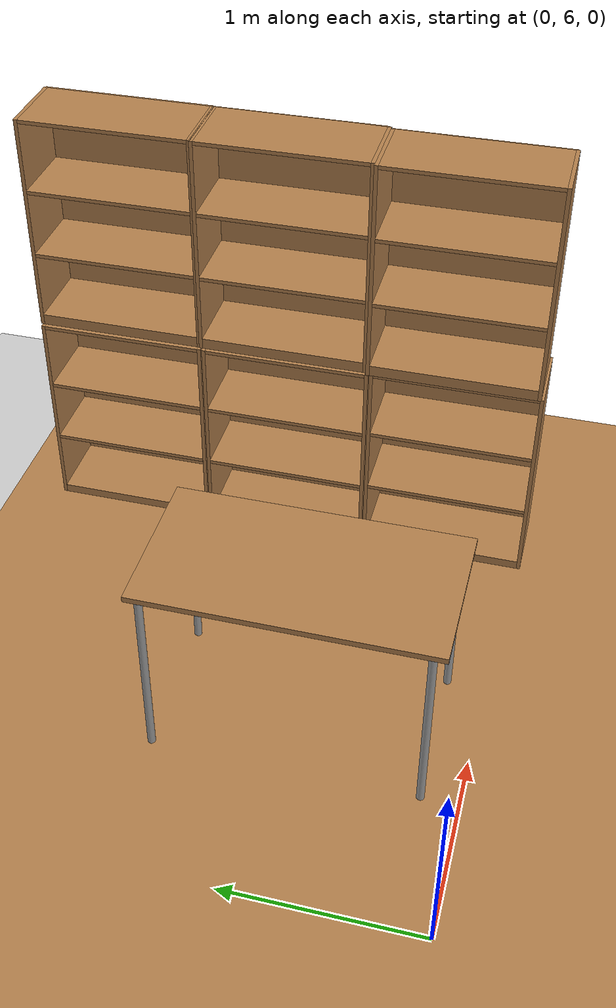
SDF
<sdf version="1.7">
 <world name="default">
  <model name="ground_plane">
   <static>1</static>
   <link name="link">
    <collision name="collision">
     <geometry><plane><normal>0 0 1</normal><size>100 100</size></plane></geometry>
     <surface>
      <contact><collide_bitmask>65535</collide_bitmask></contact>
      <friction><ode><mu>100</mu><mu2>50</mu2></ode></friction>
     </surface>
    </collision>
    <visual name="visual">
     <cast_shadows>0</cast_shadows>
     <geometry><plane><normal>0 0 1</normal><size>100 100</size></plane></geometry>
     <material>
      <script><uri>file://media/materials/scripts/gazebo.material</uri><name>Gazebo/Grey</name></script>
     </material>
    </visual>
   </link>
  </model>
  <model name="ground">
   <link name="Wall_2">
    <pose>6.2457 -16.572 0 0 -0 0</pose>
    <inertial>
     <mass>1</mass>
     <inertia><ixx>1</ixx><ixy>0</ixy><ixz>0</ixz><iyy>1</iyy><iyz>0</iyz><izz>1</izz></inertia>
    </inertial>
    <visual name="Wall_2_Visual">
     <pose>0 0 0.005 0 -0 0</pose>
     <geometry><box><size>14 17 0.01</size></box></geometry>
     <material>
      <script><uri>file://media/materials/scripts/gazebo.material</uri><name>Gazebo/Wood</name></script>
      <ambient>0 0 0 1</ambient>
      <shader type="pixel"><normal_map>__default__</normal_map></shader>
      <diffuse>1 1 1 1</diffuse>
      <specular>0.2 0.2 0.2 1</specular>
      <emissive>0 0 0 1</emissive>
     </material>
     <meta><layer>0</layer></meta>
    </visual>
    <collision name="Wall_2_Collision">
     <pose>0 0 0.005 0 -0 0</pose>
     <geometry><box><size>14 17 0.01</size></box></geometry>
     <surface>
      <friction>
       <ode><mu>1</mu><mu2>1</mu2><fdir1>0 0 0</fdir1><slip1>0</slip1><slip2>0</slip2></ode>
       <torsional>
        <coefficient>1</coefficient>
        <patch_radius>0</patch_radius>
        <surface_radius>0</surface_radius>
        <use_patch_radius>1</use_patch_radius>
        <ode><slip>0</slip></ode>
       </torsional>
      </friction>
      <bounce><restitution_coefficient>0</restitution_coefficient><threshold>1e+06</threshold></bounce>
      <contact>
       <collide_without_contact>0</collide_without_contact>
       <collide_without_contact_bitmask>1</collide_without_contact_bitmask>
       <collide_bitmask>1</collide_bitmask>
       <ode>
        <soft_cfm>0</soft_cfm>
        <soft_erp>0.2</soft_erp>
        <kp>1e+13</kp>
        <kd>1</kd>
        <max_vel>0.01</max_vel>
        <min_depth>0</min_depth>
       </ode>
       <bullet>
        <split_impulse>1</split_impulse>
        <split_impulse_penetration_threshold>-0.01</split_impulse_penetration_threshold>
        <soft_cfm>0</soft_cfm>
        <soft_erp>0.2</soft_erp>
        <kp>1e+13</kp>
        <kd>1</kd>
       </bullet>
      </contact>
     </surface>
    </collision>
   </link>
   <static>1</static>
   <pose>-5.17108 17.0771 0 0 -0 0</pose>
  </model>
  <model name="bookshelf">
   <static>1</static>
   <link name="link">
    <inertial><mass>1</mass></inertial>
    <collision name="back">
     <pose>0 0.005 0.6 0 -0 0</pose>
     <geometry><box><size>0.9 0.01 1.2</size></box></geometry>
    </collision>
    <visual name="visual1">
     <pose>0 0.005 0.6 0 -0 0</pose>
     <geometry><box><size>0.9 0.01 1.2</size></box></geometry>
     <material>
      <script><uri>file://media/materials/scripts/gazebo.material</uri><name>Gazebo/Wood</name></script>
     </material>
    </visual>
    <collision name="left_side">
     <pose>0.45 -0.195 0.6 0 -0 0</pose>
     <geometry><box><size>0.02 0.4 1.2</size></box></geometry>
    </collision>
    <visual name="visual2">
     <pose>0.45 -0.195 0.6 0 -0 0</pose>
     <geometry><box><size>0.02 0.4 1.2</size></box></geometry>
     <material>
      <script><uri>file://media/materials/scripts/gazebo.material</uri><name>Gazebo/Wood</name></script>
     </material>
    </visual>
    <collision name="right_side">
     <pose>-0.45 -0.195 0.6 0 -0 0</pose>
     <geometry><box><size>0.02 0.4 1.2</size></box></geometry>
    </collision>
    <visual name="visual3">
     <pose>-0.45 -0.195 0.6 0 -0 0</pose>
     <geometry><box><size>0.02 0.4 1.2</size></box></geometry>
     <material>
      <script><uri>file://media/materials/scripts/gazebo.material</uri><name>Gazebo/Wood</name></script>
     </material>
    </visual>
    <collision name="bottom">
     <pose>0 -0.195 0.03 0 -0 0</pose>
     <geometry><box><size>0.88 0.4 0.06</size></box></geometry>
    </collision>
    <visual name="visual4">
     <pose>0 -0.195 0.03 0 -0 0</pose>
     <geometry><box><size>0.88 0.4 0.06</size></box></geometry>
     <material>
      <script><uri>file://media/materials/scripts/gazebo.material</uri><name>Gazebo/Wood</name></script>
     </material>
    </visual>
    <collision name="top">
     <pose>0 -0.195 1.19 0 -0 0</pose>
     <geometry><box><size>0.88 0.4 0.02</size></box></geometry>
    </collision>
    <visual name="visual5">
     <pose>0 -0.195 1.19 0 -0 0</pose>
     <geometry><box><size>0.88 0.4 0.02</size></box></geometry>
     <material>
      <script><uri>file://media/materials/scripts/gazebo.material</uri><name>Gazebo/Wood</name></script>
     </material>
    </visual>
    <collision name="low_shelf">
     <pose>0 -0.195 0.43 0 -0 0</pose>
     <geometry><box><size>0.88 0.4 0.02</size></box></geometry>
    </collision>
    <visual name="visual6">
     <pose>0 -0.195 0.43 0 -0 0</pose>
     <geometry><box><size>0.88 0.4 0.02</size></box></geometry>
     <material>
      <script><uri>file://media/materials/scripts/gazebo.material</uri><name>Gazebo/Wood</name></script>
     </material>
    </visual>
    <collision name="high_shelf">
     <pose>0 -0.195 0.8 0 -0 0</pose>
     <geometry><box><size>0.88 0.4 0.02</size></box></geometry>
    </collision>
    <visual name="visual7">
     <pose>0 -0.195 0.8 0 -0 0</pose>
     <geometry><box><size>0.88 0.4 0.02</size></box></geometry>
     <material>
      <script><uri>file://media/materials/scripts/gazebo.material</uri><name>Gazebo/Wood</name></script>
     </material>
    </visual>
   </link>
   <pose>2.81633 8.2449 0 0 0 -1.5708</pose>
  </model>
  <model name="bookshelf_clone">
   <static>1</static>
   <link name="link">
    <inertial><mass>1</mass></inertial>
    <collision name="back">
     <pose>0 0.005 0.6 0 -0 0</pose>
     <geometry><box><size>0.9 0.01 1.2</size></box></geometry>
    </collision>
    <visual name="visual1">
     <pose>0 0.005 0.6 0 -0 0</pose>
     <geometry><box><size>0.9 0.01 1.2</size></box></geometry>
     <material>
      <script><uri>file://media/materials/scripts/gazebo.material</uri><name>Gazebo/Wood</name></script>
     </material>
    </visual>
    <collision name="left_side">
     <pose>0.45 -0.195 0.6 0 -0 0</pose>
     <geometry><box><size>0.02 0.4 1.2</size></box></geometry>
    </collision>
    <visual name="visual2">
     <pose>0.45 -0.195 0.6 0 -0 0</pose>
     <geometry><box><size>0.02 0.4 1.2</size></box></geometry>
     <material>
      <script><uri>file://media/materials/scripts/gazebo.material</uri><name>Gazebo/Wood</name></script>
     </material>
    </visual>
    <collision name="right_side">
     <pose>-0.45 -0.195 0.6 0 -0 0</pose>
     <geometry><box><size>0.02 0.4 1.2</size></box></geometry>
    </collision>
    <visual name="visual3">
     <pose>-0.45 -0.195 0.6 0 -0 0</pose>
     <geometry><box><size>0.02 0.4 1.2</size></box></geometry>
     <material>
      <script><uri>file://media/materials/scripts/gazebo.material</uri><name>Gazebo/Wood</name></script>
     </material>
    </visual>
    <collision name="bottom">
     <pose>0 -0.195 0.03 0 -0 0</pose>
     <geometry><box><size>0.88 0.4 0.06</size></box></geometry>
    </collision>
    <visual name="visual4">
     <pose>0 -0.195 0.03 0 -0 0</pose>
     <geometry><box><size>0.88 0.4 0.06</size></box></geometry>
     <material>
      <script><uri>file://media/materials/scripts/gazebo.material</uri><name>Gazebo/Wood</name></script>
     </material>
    </visual>
    <collision name="top">
     <pose>0 -0.195 1.19 0 -0 0</pose>
     <geometry><box><size>0.88 0.4 0.02</size></box></geometry>
    </collision>
    <visual name="visual5">
     <pose>0 -0.195 1.19 0 -0 0</pose>
     <geometry><box><size>0.88 0.4 0.02</size></box></geometry>
     <material>
      <script><uri>file://media/materials/scripts/gazebo.material</uri><name>Gazebo/Wood</name></script>
     </material>
    </visual>
    <collision name="low_shelf">
     <pose>0 -0.195 0.43 0 -0 0</pose>
     <geometry><box><size>0.88 0.4 0.02</size></box></geometry>
    </collision>
    <visual name="visual6">
     <pose>0 -0.195 0.43 0 -0 0</pose>
     <geometry><box><size>0.88 0.4 0.02</size></box></geometry>
     <material>
      <script><uri>file://media/materials/scripts/gazebo.material</uri><name>Gazebo/Wood</name></script>
     </material>
    </visual>
    <collision name="high_shelf">
     <pose>0 -0.195 0.8 0 -0 0</pose>
     <geometry><box><size>0.88 0.4 0.02</size></box></geometry>
    </collision>
    <visual name="visual7">
     <pose>0 -0.195 0.8 0 -0 0</pose>
     <geometry><box><size>0.88 0.4 0.02</size></box></geometry>
     <material>
      <script><uri>file://media/materials/scripts/gazebo.material</uri><name>Gazebo/Wood</name></script>
     </material>
    </visual>
   </link>
   <pose>2.81395 7.31893 0 0 0 -1.5708</pose>
  </model>
  <model name="bookshelf_clone_0">
   <static>1</static>
   <link name="link">
    <inertial><mass>1</mass></inertial>
    <collision name="back">
     <pose>0 0.005 0.6 0 -0 0</pose>
     <geometry><box><size>0.9 0.01 1.2</size></box></geometry>
    </collision>
    <visual name="visual1">
     <pose>0 0.005 0.6 0 -0 0</pose>
     <geometry><box><size>0.9 0.01 1.2</size></box></geometry>
     <material>
      <script><uri>file://media/materials/scripts/gazebo.material</uri><name>Gazebo/Wood</name></script>
     </material>
    </visual>
    <collision name="left_side">
     <pose>0.45 -0.195 0.6 0 -0 0</pose>
     <geometry><box><size>0.02 0.4 1.2</size></box></geometry>
    </collision>
    <visual name="visual2">
     <pose>0.45 -0.195 0.6 0 -0 0</pose>
     <geometry><box><size>0.02 0.4 1.2</size></box></geometry>
     <material>
      <script><uri>file://media/materials/scripts/gazebo.material</uri><name>Gazebo/Wood</name></script>
     </material>
    </visual>
    <collision name="right_side">
     <pose>-0.45 -0.195 0.6 0 -0 0</pose>
     <geometry><box><size>0.02 0.4 1.2</size></box></geometry>
    </collision>
    <visual name="visual3">
     <pose>-0.45 -0.195 0.6 0 -0 0</pose>
     <geometry><box><size>0.02 0.4 1.2</size></box></geometry>
     <material>
      <script><uri>file://media/materials/scripts/gazebo.material</uri><name>Gazebo/Wood</name></script>
     </material>
    </visual>
    <collision name="bottom">
     <pose>0 -0.195 0.03 0 -0 0</pose>
     <geometry><box><size>0.88 0.4 0.06</size></box></geometry>
    </collision>
    <visual name="visual4">
     <pose>0 -0.195 0.03 0 -0 0</pose>
     <geometry><box><size>0.88 0.4 0.06</size></box></geometry>
     <material>
      <script><uri>file://media/materials/scripts/gazebo.material</uri><name>Gazebo/Wood</name></script>
     </material>
    </visual>
    <collision name="top">
     <pose>0 -0.195 1.19 0 -0 0</pose>
     <geometry><box><size>0.88 0.4 0.02</size></box></geometry>
    </collision>
    <visual name="visual5">
     <pose>0 -0.195 1.19 0 -0 0</pose>
     <geometry><box><size>0.88 0.4 0.02</size></box></geometry>
     <material>
      <script><uri>file://media/materials/scripts/gazebo.material</uri><name>Gazebo/Wood</name></script>
     </material>
    </visual>
    <collision name="low_shelf">
     <pose>0 -0.195 0.43 0 -0 0</pose>
     <geometry><box><size>0.88 0.4 0.02</size></box></geometry>
    </collision>
    <visual name="visual6">
     <pose>0 -0.195 0.43 0 -0 0</pose>
     <geometry><box><size>0.88 0.4 0.02</size></box></geometry>
     <material>
      <script><uri>file://media/materials/scripts/gazebo.material</uri><name>Gazebo/Wood</name></script>
     </material>
    </visual>
    <collision name="high_shelf">
     <pose>0 -0.195 0.8 0 -0 0</pose>
     <geometry><box><size>0.88 0.4 0.02</size></box></geometry>
    </collision>
    <visual name="visual7">
     <pose>0 -0.195 0.8 0 -0 0</pose>
     <geometry><box><size>0.88 0.4 0.02</size></box></geometry>
     <material>
      <script><uri>file://media/materials/scripts/gazebo.material</uri><name>Gazebo/Wood</name></script>
     </material>
    </visual>
   </link>
   <pose>2.82717 6.39672 0 0 0 -1.5708</pose>
  </model>
  <model name="table_0_clone_0">
   <static>1</static>
   <link name="link">
    <collision name="surface">
     <pose>0 0 1 0 -0 0</pose>
     <geometry><box><size>1.5 0.8 0.03</size></box></geometry>
     <surface><friction><ode><mu>0.6</mu><mu2>0.6</mu2></ode></friction></surface>
    </collision>
    <visual name="visual1">
     <pose>0 0 1 0 -0 0</pose>
     <geometry><box><size>1.5 0.8 0.03</size></box></geometry>
     <material>
      <script><uri>file://media/materials/scripts/gazebo.material</uri><name>Gazebo/Wood</name></script>
     </material>
    </visual>
    <collision name="front_left_leg">
     <pose>0.68 0.38 0.5 0 -0 0</pose>
     <geometry><cylinder><radius>0.02</radius><length>1</length></cylinder></geometry>
    </collision>
    <visual name="front_left_leg">
     <pose>0.68 0.38 0.5 0 -0 0</pose>
     <geometry><cylinder><radius>0.02</radius><length>1</length></cylinder></geometry>
     <material>
      <script><uri>file://media/materials/scripts/gazebo.material</uri><name>Gazebo/Grey</name></script>
     </material>
    </visual>
    <collision name="front_right_leg">
     <pose>0.68 -0.38 0.5 0 -0 0</pose>
     <geometry><cylinder><radius>0.02</radius><length>1</length></cylinder></geometry>
    </collision>
    <visual name="front_right_leg">
     <pose>0.68 -0.38 0.5 0 -0 0</pose>
     <geometry><cylinder><radius>0.02</radius><length>1</length></cylinder></geometry>
     <material>
      <script><uri>file://media/materials/scripts/gazebo.material</uri><name>Gazebo/Grey</name></script>
     </material>
    </visual>
    <collision name="back_right_leg">
     <pose>-0.68 -0.38 0.5 0 -0 0</pose>
     <geometry><cylinder><radius>0.02</radius><length>1</length></cylinder></geometry>
    </collision>
    <visual name="back_right_leg">
     <pose>-0.68 -0.38 0.5 0 -0 0</pose>
     <geometry><cylinder><radius>0.02</radius><length>1</length></cylinder></geometry>
     <material>
      <script><uri>file://media/materials/scripts/gazebo.material</uri><name>Gazebo/Grey</name></script>
     </material>
    </visual>
    <collision name="back_left_leg">
     <pose>-0.68 0.38 0.5 0 -0 0</pose>
     <geometry><cylinder><radius>0.02</radius><length>1</length></cylinder></geometry>
    </collision>
    <visual name="back_left_leg">
     <pose>-0.68 0.38 0.5 0 -0 0</pose>
     <geometry><cylinder><radius>0.02</radius><length>1</length></cylinder></geometry>
     <material>
      <script><uri>file://media/materials/scripts/gazebo.material</uri><name>Gazebo/Grey</name></script>
     </material>
    </visual>
   </link>
   <pose>1.10892 6.87097 0 0 -0 1.5708</pose>
  </model>
  <model name="bookshelf_clone_5">
   <static>1</static>
   <link name="link">
    <inertial><mass>1</mass></inertial>
    <collision name="back">
     <pose>0 0.005 0.6 0 -0 0</pose>
     <geometry><box><size>0.9 0.01 1.2</size></box></geometry>
    </collision>
    <visual name="visual1">
     <pose>0 0.005 0.6 0 -0 0</pose>
     <geometry><box><size>0.9 0.01 1.2</size></box></geometry>
     <material>
      <script><uri>file://media/materials/scripts/gazebo.material</uri><name>Gazebo/Wood</name></script>
     </material>
    </visual>
    <collision name="left_side">
     <pose>0.45 -0.195 0.6 0 -0 0</pose>
     <geometry><box><size>0.02 0.4 1.2</size></box></geometry>
    </collision>
    <visual name="visual2">
     <pose>0.45 -0.195 0.6 0 -0 0</pose>
     <geometry><box><size>0.02 0.4 1.2</size></box></geometry>
     <material>
      <script><uri>file://media/materials/scripts/gazebo.material</uri><name>Gazebo/Wood</name></script>
     </material>
    </visual>
    <collision name="right_side">
     <pose>-0.45 -0.195 0.6 0 -0 0</pose>
     <geometry><box><size>0.02 0.4 1.2</size></box></geometry>
    </collision>
    <visual name="visual3">
     <pose>-0.45 -0.195 0.6 0 -0 0</pose>
     <geometry><box><size>0.02 0.4 1.2</size></box></geometry>
     <material>
      <script><uri>file://media/materials/scripts/gazebo.material</uri><name>Gazebo/Wood</name></script>
     </material>
    </visual>
    <collision name="bottom">
     <pose>0 -0.195 0.03 0 -0 0</pose>
     <geometry><box><size>0.88 0.4 0.06</size></box></geometry>
    </collision>
    <visual name="visual4">
     <pose>0 -0.195 0.03 0 -0 0</pose>
     <geometry><box><size>0.88 0.4 0.06</size></box></geometry>
     <material>
      <script><uri>file://media/materials/scripts/gazebo.material</uri><name>Gazebo/Wood</name></script>
     </material>
    </visual>
    <collision name="top">
     <pose>0 -0.195 1.19 0 -0 0</pose>
     <geometry><box><size>0.88 0.4 0.02</size></box></geometry>
    </collision>
    <visual name="visual5">
     <pose>0 -0.195 1.19 0 -0 0</pose>
     <geometry><box><size>0.88 0.4 0.02</size></box></geometry>
     <material>
      <script><uri>file://media/materials/scripts/gazebo.material</uri><name>Gazebo/Wood</name></script>
     </material>
    </visual>
    <collision name="low_shelf">
     <pose>0 -0.195 0.43 0 -0 0</pose>
     <geometry><box><size>0.88 0.4 0.02</size></box></geometry>
    </collision>
    <visual name="visual6">
     <pose>0 -0.195 0.43 0 -0 0</pose>
     <geometry><box><size>0.88 0.4 0.02</size></box></geometry>
     <material>
      <script><uri>file://media/materials/scripts/gazebo.material</uri><name>Gazebo/Wood</name></script>
     </material>
    </visual>
    <collision name="high_shelf">
     <pose>0 -0.195 0.8 0 -0 0</pose>
     <geometry><box><size>0.88 0.4 0.02</size></box></geometry>
    </collision>
    <visual name="visual7">
     <pose>0 -0.195 0.8 0 -0 0</pose>
     <geometry><box><size>0.88 0.4 0.02</size></box></geometry>
     <material>
      <script><uri>file://media/materials/scripts/gazebo.material</uri><name>Gazebo/Wood</name></script>
     </material>
    </visual>
   </link>
   <pose>2.81332 8.24107 1.21975 0 0 -1.5708</pose>
  </model>
  <model name="bookshelf_clone_5_clone">
   <static>1</static>
   <link name="link">
    <inertial><mass>1</mass></inertial>
    <collision name="back">
     <pose>0 0.005 0.6 0 -0 0</pose>
     <geometry><box><size>0.9 0.01 1.2</size></box></geometry>
    </collision>
    <visual name="visual1">
     <pose>0 0.005 0.6 0 -0 0</pose>
     <geometry><box><size>0.9 0.01 1.2</size></box></geometry>
     <material>
      <script><uri>file://media/materials/scripts/gazebo.material</uri><name>Gazebo/Wood</name></script>
     </material>
    </visual>
    <collision name="left_side">
     <pose>0.45 -0.195 0.6 0 -0 0</pose>
     <geometry><box><size>0.02 0.4 1.2</size></box></geometry>
    </collision>
    <visual name="visual2">
     <pose>0.45 -0.195 0.6 0 -0 0</pose>
     <geometry><box><size>0.02 0.4 1.2</size></box></geometry>
     <material>
      <script><uri>file://media/materials/scripts/gazebo.material</uri><name>Gazebo/Wood</name></script>
     </material>
    </visual>
    <collision name="right_side">
     <pose>-0.45 -0.195 0.6 0 -0 0</pose>
     <geometry><box><size>0.02 0.4 1.2</size></box></geometry>
    </collision>
    <visual name="visual3">
     <pose>-0.45 -0.195 0.6 0 -0 0</pose>
     <geometry><box><size>0.02 0.4 1.2</size></box></geometry>
     <material>
      <script><uri>file://media/materials/scripts/gazebo.material</uri><name>Gazebo/Wood</name></script>
     </material>
    </visual>
    <collision name="bottom">
     <pose>0 -0.195 0.03 0 -0 0</pose>
     <geometry><box><size>0.88 0.4 0.06</size></box></geometry>
    </collision>
    <visual name="visual4">
     <pose>0 -0.195 0.03 0 -0 0</pose>
     <geometry><box><size>0.88 0.4 0.06</size></box></geometry>
     <material>
      <script><uri>file://media/materials/scripts/gazebo.material</uri><name>Gazebo/Wood</name></script>
     </material>
    </visual>
    <collision name="top">
     <pose>0 -0.195 1.19 0 -0 0</pose>
     <geometry><box><size>0.88 0.4 0.02</size></box></geometry>
    </collision>
    <visual name="visual5">
     <pose>0 -0.195 1.19 0 -0 0</pose>
     <geometry><box><size>0.88 0.4 0.02</size></box></geometry>
     <material>
      <script><uri>file://media/materials/scripts/gazebo.material</uri><name>Gazebo/Wood</name></script>
     </material>
    </visual>
    <collision name="low_shelf">
     <pose>0 -0.195 0.43 0 -0 0</pose>
     <geometry><box><size>0.88 0.4 0.02</size></box></geometry>
    </collision>
    <visual name="visual6">
     <pose>0 -0.195 0.43 0 -0 0</pose>
     <geometry><box><size>0.88 0.4 0.02</size></box></geometry>
     <material>
      <script><uri>file://media/materials/scripts/gazebo.material</uri><name>Gazebo/Wood</name></script>
     </material>
    </visual>
    <collision name="high_shelf">
     <pose>0 -0.195 0.8 0 -0 0</pose>
     <geometry><box><size>0.88 0.4 0.02</size></box></geometry>
    </collision>
    <visual name="visual7">
     <pose>0 -0.195 0.8 0 -0 0</pose>
     <geometry><box><size>0.88 0.4 0.02</size></box></geometry>
     <material>
      <script><uri>file://media/materials/scripts/gazebo.material</uri><name>Gazebo/Wood</name></script>
     </material>
    </visual>
   </link>
   <pose>2.80855 7.32818 1.21975 0 0 -1.5708</pose>
  </model>
  <model name="bookshelf_clone_5_clone_clone">
   <static>1</static>
   <link name="link">
    <inertial><mass>1</mass></inertial>
    <collision name="back">
     <pose>0 0.005 0.6 0 -0 0</pose>
     <geometry><box><size>0.9 0.01 1.2</size></box></geometry>
    </collision>
    <visual name="visual1">
     <pose>0 0.005 0.6 0 -0 0</pose>
     <geometry><box><size>0.9 0.01 1.2</size></box></geometry>
     <material>
      <script><uri>file://media/materials/scripts/gazebo.material</uri><name>Gazebo/Wood</name></script>
     </material>
    </visual>
    <collision name="left_side">
     <pose>0.45 -0.195 0.6 0 -0 0</pose>
     <geometry><box><size>0.02 0.4 1.2</size></box></geometry>
    </collision>
    <visual name="visual2">
     <pose>0.45 -0.195 0.6 0 -0 0</pose>
     <geometry><box><size>0.02 0.4 1.2</size></box></geometry>
     <material>
      <script><uri>file://media/materials/scripts/gazebo.material</uri><name>Gazebo/Wood</name></script>
     </material>
    </visual>
    <collision name="right_side">
     <pose>-0.45 -0.195 0.6 0 -0 0</pose>
     <geometry><box><size>0.02 0.4 1.2</size></box></geometry>
    </collision>
    <visual name="visual3">
     <pose>-0.45 -0.195 0.6 0 -0 0</pose>
     <geometry><box><size>0.02 0.4 1.2</size></box></geometry>
     <material>
      <script><uri>file://media/materials/scripts/gazebo.material</uri><name>Gazebo/Wood</name></script>
     </material>
    </visual>
    <collision name="bottom">
     <pose>0 -0.195 0.03 0 -0 0</pose>
     <geometry><box><size>0.88 0.4 0.06</size></box></geometry>
    </collision>
    <visual name="visual4">
     <pose>0 -0.195 0.03 0 -0 0</pose>
     <geometry><box><size>0.88 0.4 0.06</size></box></geometry>
     <material>
      <script><uri>file://media/materials/scripts/gazebo.material</uri><name>Gazebo/Wood</name></script>
     </material>
    </visual>
    <collision name="top">
     <pose>0 -0.195 1.19 0 -0 0</pose>
     <geometry><box><size>0.88 0.4 0.02</size></box></geometry>
    </collision>
    <visual name="visual5">
     <pose>0 -0.195 1.19 0 -0 0</pose>
     <geometry><box><size>0.88 0.4 0.02</size></box></geometry>
     <material>
      <script><uri>file://media/materials/scripts/gazebo.material</uri><name>Gazebo/Wood</name></script>
     </material>
    </visual>
    <collision name="low_shelf">
     <pose>0 -0.195 0.43 0 -0 0</pose>
     <geometry><box><size>0.88 0.4 0.02</size></box></geometry>
    </collision>
    <visual name="visual6">
     <pose>0 -0.195 0.43 0 -0 0</pose>
     <geometry><box><size>0.88 0.4 0.02</size></box></geometry>
     <material>
      <script><uri>file://media/materials/scripts/gazebo.material</uri><name>Gazebo/Wood</name></script>
     </material>
    </visual>
    <collision name="high_shelf">
     <pose>0 -0.195 0.8 0 -0 0</pose>
     <geometry><box><size>0.88 0.4 0.02</size></box></geometry>
    </collision>
    <visual name="visual7">
     <pose>0 -0.195 0.8 0 -0 0</pose>
     <geometry><box><size>0.88 0.4 0.02</size></box></geometry>
     <material>
      <script><uri>file://media/materials/scripts/gazebo.material</uri><name>Gazebo/Wood</name></script>
     </material>
    </visual>
   </link>
   <pose>2.79017 6.40937 1.21975 0 0 -1.5708</pose>
  </model>
 </world>
</sdf>
